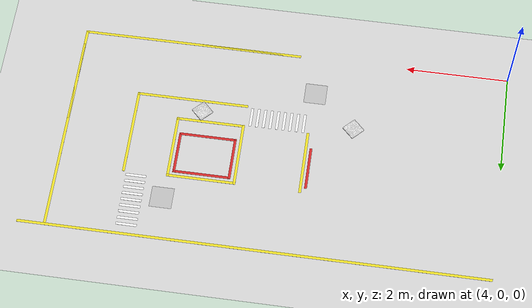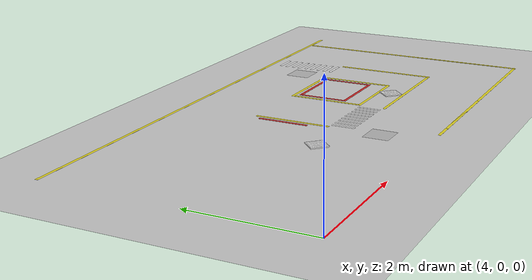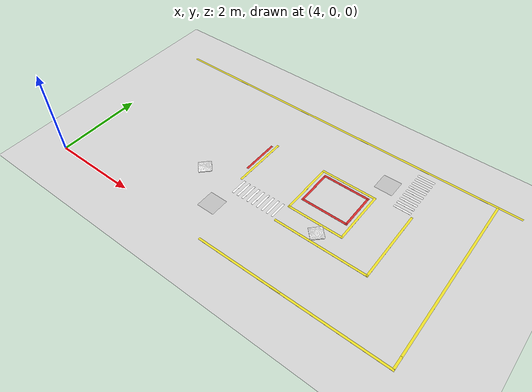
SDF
<sdf version="1.6">
 <world name="default">
  <model name="ground_plane">
   <static>1</static>
   <link name="link">
    <collision name="collision">
     <geometry><plane><normal>0 0 1</normal><size>100 100</size></plane></geometry>
     <surface><friction><ode><mu>100</mu><mu2>50</mu2></ode></friction></surface>
    </collision>
    <visual name="visual">
     <cast_shadows>0</cast_shadows>
     <geometry><plane><normal>0 0 1</normal><size>100 100</size></plane></geometry>
     <material>
      <script><uri>file://media/materials/scripts/gazebo.material</uri><name>Gazebo/Grey</name></script>
     </material>
    </visual>
   </link>
  </model>
  <model name="newPedestrianSign">
   <link name="link_7">
    <inertial>
     <mass>1</mass>
     <inertia>
      <ixx>0.166667</ixx>
      <ixy>0</ixy>
      <ixz>0</ixz>
      <iyy>0.166667</iyy>
      <iyz>0</iyz>
      <izz>0.166667</izz>
     </inertia>
    </inertial>
    <visual name="visual">
     <pose>-0.2 -0.2 0 -1.5708 -0 0</pose>
     <geometry>
      <mesh><uri>model://newPedestrianSign/model/model.dae</uri><scale>0.5 0.5 0.5</scale></mesh>
     </geometry>
     <material><lighting>1</lighting></material>
    </visual>
    <collision name="collision">
     <pose>0 0 0 0 -0 0.785398</pose>
     <geometry><box><size>0.28 0.28 1e-05</size></box></geometry>
     <surface>
      <friction>
       <ode><mu>1</mu><mu2>1</mu2><fdir1>0 0 0</fdir1><slip1>0</slip1><slip2>0</slip2></ode>
       <torsional>
        <coefficient>1</coefficient>
        <patch_radius>0</patch_radius>
        <surface_radius>0</surface_radius>
        <use_patch_radius>1</use_patch_radius>
        <ode><slip>0</slip></ode>
       </torsional>
      </friction>
      <bounce><restitution_coefficient>0</restitution_coefficient><threshold>1e+06</threshold></bounce>
      <contact>
       <collide_without_contact>0</collide_without_contact>
       <collide_without_contact_bitmask>1</collide_without_contact_bitmask>
       <collide_bitmask>1</collide_bitmask>
       <ode>
        <soft_cfm>0</soft_cfm>
        <soft_erp>0.2</soft_erp>
        <kp>1e+13</kp>
        <kd>1</kd>
        <max_vel>0.01</max_vel>
        <min_depth>0</min_depth>
       </ode>
       <bullet>
        <split_impulse>1</split_impulse>
        <split_impulse_penetration_threshold>-0.01</split_impulse_penetration_threshold>
        <soft_cfm>0</soft_cfm>
        <soft_erp>0.2</soft_erp>
        <kp>1e+13</kp>
        <kd>1</kd>
       </bullet>
      </contact>
     </surface>
    </collision>
   </link>
   <static>1</static>
   <pose>6.96801 1.5365 0 0 -0 0</pose>
  </model>
  <model name="newPedestrianSign_0">
   <link name="link_7">
    <inertial>
     <mass>1</mass>
     <inertia>
      <ixx>0.166667</ixx>
      <ixy>0</ixy>
      <ixz>0</ixz>
      <iyy>0.166667</iyy>
      <iyz>0</iyz>
      <izz>0.166667</izz>
     </inertia>
    </inertial>
    <visual name="visual">
     <pose>-0.2 -0.2 0 -1.5708 -0 0</pose>
     <geometry>
      <mesh><uri>model://newPedestrianSign/model/model.dae</uri><scale>0.5 0.5 0.5</scale></mesh>
     </geometry>
     <material><lighting>1</lighting></material>
    </visual>
    <collision name="collision">
     <pose>0 0 0 0 -0 0.785398</pose>
     <geometry><box><size>0.28 0.28 1e-05</size></box></geometry>
     <surface>
      <friction>
       <ode><mu>1</mu><mu2>1</mu2><fdir1>0 0 0</fdir1><slip1>0</slip1><slip2>0</slip2></ode>
       <torsional>
        <coefficient>1</coefficient>
        <patch_radius>0</patch_radius>
        <surface_radius>0</surface_radius>
        <use_patch_radius>1</use_patch_radius>
        <ode><slip>0</slip></ode>
       </torsional>
      </friction>
      <bounce><restitution_coefficient>0</restitution_coefficient><threshold>1e+06</threshold></bounce>
      <contact>
       <collide_without_contact>0</collide_without_contact>
       <collide_without_contact_bitmask>1</collide_without_contact_bitmask>
       <collide_bitmask>1</collide_bitmask>
       <ode>
        <soft_cfm>0</soft_cfm>
        <soft_erp>0.2</soft_erp>
        <kp>1e+13</kp>
        <kd>1</kd>
        <max_vel>0.01</max_vel>
        <min_depth>0</min_depth>
       </ode>
       <bullet>
        <split_impulse>1</split_impulse>
        <split_impulse_penetration_threshold>-0.01</split_impulse_penetration_threshold>
        <soft_cfm>0</soft_cfm>
        <soft_erp>0.2</soft_erp>
        <kp>1e+13</kp>
        <kd>1</kd>
       </bullet>
      </contact>
     </surface>
    </collision>
   </link>
   <static>1</static>
   <pose>9.94353 1.54159 0 0 -0 0</pose>
  </model>
  <model name="line2m_0">
   <link name="link_0">
    <inertial>
     <mass>1</mass>
     <inertia>
      <ixx>0.166667</ixx>
      <ixy>0</ixy>
      <ixz>0</ixz>
      <iyy>0.166667</iyy>
      <iyz>0</iyz>
      <izz>0.166667</izz>
     </inertia>
    </inertial>
    <visual name="visual">
     <geometry><box><size>2 0.05 0.001</size></box></geometry>
     <material>
      <lighting>1</lighting>
      <script><uri>file://media/materials/scripts/gazebo.material</uri><name>Gazebo/Yellow</name></script>
     </material>
    </visual>
    <collision name="collision">
     <geometry><box><size>2 0.05 1e-05</size></box></geometry>
     <surface>
      <friction>
       <ode><mu>1</mu><mu2>1</mu2><fdir1>0 0 0</fdir1><slip1>0</slip1><slip2>0</slip2></ode>
       <torsional>
        <coefficient>1</coefficient>
        <patch_radius>0</patch_radius>
        <surface_radius>0</surface_radius>
        <use_patch_radius>1</use_patch_radius>
        <ode><slip>0</slip></ode>
       </torsional>
      </friction>
      <bounce><restitution_coefficient>0</restitution_coefficient><threshold>1e+06</threshold></bounce>
      <contact>
       <collide_without_contact>0</collide_without_contact>
       <collide_without_contact_bitmask>1</collide_without_contact_bitmask>
       <collide_bitmask>1</collide_bitmask>
       <ode>
        <soft_cfm>0</soft_cfm>
        <soft_erp>0.2</soft_erp>
        <kp>1e+13</kp>
        <kd>1</kd>
        <max_vel>0.01</max_vel>
        <min_depth>0</min_depth>
       </ode>
       <bullet>
        <split_impulse>1</split_impulse>
        <split_impulse_penetration_threshold>-0.01</split_impulse_penetration_threshold>
        <soft_cfm>0</soft_cfm>
        <soft_erp>0.2</soft_erp>
        <kp>1e+13</kp>
        <kd>1</kd>
       </bullet>
      </contact>
     </surface>
    </collision>
   </link>
   <static>1</static>
   <pose>9.13049 0 0 0 -0 0</pose>
  </model>
  <model name="line9m">
   <link name="link_1">
    <inertial>
     <mass>1</mass>
     <inertia>
      <ixx>0.166667</ixx>
      <ixy>0</ixy>
      <ixz>0</ixz>
      <iyy>0.166667</iyy>
      <iyz>0</iyz>
      <izz>0.166667</izz>
     </inertia>
    </inertial>
    <visual name="visual">
     <geometry><box><size>9 0.05 0.001</size></box></geometry>
     <material>
      <lighting>1</lighting>
      <script><uri>file://media/materials/scripts/gazebo.material</uri><name>Gazebo/Yellow</name></script>
     </material>
    </visual>
   </link>
   <static>1</static>
   <pose>8.5 4.3 0 0 -0 0</pose>
  </model>
  <model name="line2m_1">
   <link name="link_0">
    <inertial>
     <mass>1</mass>
     <inertia>
      <ixx>0.166667</ixx>
      <ixy>0</ixy>
      <ixz>0</ixz>
      <iyy>0.166667</iyy>
      <iyz>0</iyz>
      <izz>0.166667</izz>
     </inertia>
    </inertial>
    <visual name="visual">
     <geometry><box><size>2 0.05 0.001</size></box></geometry>
     <material>
      <lighting>1</lighting>
      <script><uri>file://media/materials/scripts/gazebo.material</uri><name>Gazebo/Yellow</name></script>
     </material>
    </visual>
    <collision name="collision">
     <geometry><box><size>2 0.05 1e-05</size></box></geometry>
     <surface>
      <friction>
       <ode><mu>1</mu><mu2>1</mu2><fdir1>0 0 0</fdir1><slip1>0</slip1><slip2>0</slip2></ode>
       <torsional>
        <coefficient>1</coefficient>
        <patch_radius>0</patch_radius>
        <surface_radius>0</surface_radius>
        <use_patch_radius>1</use_patch_radius>
        <ode><slip>0</slip></ode>
       </torsional>
      </friction>
      <bounce><restitution_coefficient>0</restitution_coefficient><threshold>1e+06</threshold></bounce>
      <contact>
       <collide_without_contact>0</collide_without_contact>
       <collide_without_contact_bitmask>1</collide_without_contact_bitmask>
       <collide_bitmask>1</collide_bitmask>
       <ode>
        <soft_cfm>0</soft_cfm>
        <soft_erp>0.2</soft_erp>
        <kp>1e+13</kp>
        <kd>1</kd>
        <max_vel>0.01</max_vel>
        <min_depth>0</min_depth>
       </ode>
       <bullet>
        <split_impulse>1</split_impulse>
        <split_impulse_penetration_threshold>-0.01</split_impulse_penetration_threshold>
        <soft_cfm>0</soft_cfm>
        <soft_erp>0.2</soft_erp>
        <kp>1e+13</kp>
        <kd>1</kd>
       </bullet>
      </contact>
     </surface>
    </collision>
   </link>
   <static>1</static>
   <pose>12.47 1.00117 0 0 -0 1.5708</pose>
  </model>
  <model name="forkliftRoadSign">
   <link name="link_7">
    <inertial>
     <mass>1</mass>
     <inertia>
      <ixx>0.166667</ixx>
      <ixy>0</ixy>
      <ixz>0</ixz>
      <iyy>0.166667</iyy>
      <iyz>0</iyz>
      <izz>0.166667</izz>
     </inertia>
    </inertial>
    <visual name="visual">
     <pose>-0.2 -0.2 0.01 -1.5708 -0 0</pose>
     <geometry>
      <mesh><uri>model://forkliftRoadSign/model/model.dae</uri><scale>0.7 0.7 0.7</scale></mesh>
     </geometry>
     <material><lighting>1</lighting></material>
    </visual>
   </link>
   <static>1</static>
   <pose>7.75 0.8 0 0 -0 1.5708</pose>
  </model>
  <model name="forkliftRoadSign_0">
   <link name="link_7">
    <inertial>
     <mass>1</mass>
     <inertia>
      <ixx>0.166667</ixx>
      <ixy>0</ixy>
      <ixz>0</ixz>
      <iyy>0.166667</iyy>
      <iyz>0</iyz>
      <izz>0.166667</izz>
     </inertia>
    </inertial>
    <visual name="visual">
     <pose>-0.2 -0.2 0.01 -1.5708 -0 0</pose>
     <geometry>
      <mesh><uri>model://forkliftRoadSign/model/model.dae</uri><scale>0.7 0.7 0.7</scale></mesh>
     </geometry>
     <material><lighting>1</lighting></material>
    </visual>
   </link>
   <static>1</static>
   <pose>10.3501 3.4718 0 0 0 -1.5708</pose>
  </model>
  <model name="zebraCrossing9_0">
   <link name="link_0">
    <inertial>
     <mass>1</mass>
     <inertia>
      <ixx>0.166667</ixx>
      <ixy>0</ixy>
      <ixz>0</ixz>
      <iyy>0.166667</iyy>
      <iyz>0</iyz>
      <izz>0.166667</izz>
     </inertia>
    </inertial>
    <visual name="visual">
     <geometry><box><size>0.05 0.4 0.001</size></box></geometry>
     <material>
      <lighting>1</lighting>
      <script><uri>file://media/materials/scripts/gazebo.material</uri><name>Gazebo/White</name></script>
      <shader type="pixel"><normal_map>__default__</normal_map></shader>
      <ambient>1 1 1 1</ambient>
      <diffuse>1 1 1 1</diffuse>
      <specular>0.01 0.01 0.01 1</specular>
      <emissive>0 0 0 1</emissive>
     </material>
     <cast_shadows>0</cast_shadows>
    </visual>
    <visual name="ModelPreview_0::link_0::visual_1">
     <pose>0.13 0 0 0 -0 0</pose>
     <geometry><box><size>0.05 0.4 0.001</size></box></geometry>
     <material>
      <lighting>1</lighting>
      <script><uri>file://media/materials/scripts/gazebo.material</uri><name>Gazebo/White</name></script>
      <shader type="pixel"><normal_map>__default__</normal_map></shader>
      <ambient>1 1 1 1</ambient>
      <diffuse>1 1 1 1</diffuse>
      <specular>0.01 0.01 0.01 1</specular>
      <emissive>0 0 0 1</emissive>
     </material>
     <cast_shadows>0</cast_shadows>
    </visual>
    <visual name="ModelPreview_0::link_0::visual_2">
     <pose>0.26 0 0 0 -0 0</pose>
     <geometry><box><size>0.05 0.4 0.001</size></box></geometry>
     <material>
      <lighting>1</lighting>
      <script><uri>file://media/materials/scripts/gazebo.material</uri><name>Gazebo/White</name></script>
      <shader type="pixel"><normal_map>__default__</normal_map></shader>
      <ambient>1 1 1 1</ambient>
      <diffuse>1 1 1 1</diffuse>
      <specular>0.01 0.01 0.01 1</specular>
      <emissive>0 0 0 1</emissive>
     </material>
     <cast_shadows>0</cast_shadows>
    </visual>
    <visual name="ModelPreview_0::link_0::visual_3">
     <pose>0.39 0 0 0 -0 0</pose>
     <geometry><box><size>0.05 0.4 0.001</size></box></geometry>
     <material>
      <lighting>1</lighting>
      <script><uri>file://media/materials/scripts/gazebo.material</uri><name>Gazebo/White</name></script>
      <shader type="pixel"><normal_map>__default__</normal_map></shader>
      <ambient>1 1 1 1</ambient>
      <diffuse>1 1 1 1</diffuse>
      <specular>0.01 0.01 0.01 1</specular>
      <emissive>0 0 0 1</emissive>
     </material>
     <cast_shadows>0</cast_shadows>
    </visual>
    <visual name="ModelPreview_0::link_0::visual_4">
     <pose>0.52 0 0 0 -0 0</pose>
     <geometry><box><size>0.05 0.4 0.001</size></box></geometry>
     <material>
      <lighting>1</lighting>
      <script><uri>file://media/materials/scripts/gazebo.material</uri><name>Gazebo/White</name></script>
      <shader type="pixel"><normal_map>__default__</normal_map></shader>
      <ambient>1 1 1 1</ambient>
      <diffuse>1 1 1 1</diffuse>
      <specular>0.01 0.01 0.01 1</specular>
      <emissive>0 0 0 1</emissive>
     </material>
     <cast_shadows>0</cast_shadows>
    </visual>
    <visual name="ModelPreview_0::link_0::visual_5">
     <pose>-0.13 0 0 0 -0 0</pose>
     <geometry><box><size>0.05 0.4 0.001</size></box></geometry>
     <material>
      <lighting>1</lighting>
      <script><uri>file://media/materials/scripts/gazebo.material</uri><name>Gazebo/White</name></script>
      <shader type="pixel"><normal_map>__default__</normal_map></shader>
      <ambient>1 1 1 1</ambient>
      <diffuse>1 1 1 1</diffuse>
      <specular>0.01 0.01 0.01 1</specular>
      <emissive>0 0 0 1</emissive>
     </material>
     <cast_shadows>0</cast_shadows>
    </visual>
    <visual name="ModelPreview_0::link_0::visual_6">
     <pose>-0.26 0 0 0 -0 0</pose>
     <geometry><box><size>0.05 0.4 0.001</size></box></geometry>
     <material>
      <lighting>1</lighting>
      <script><uri>file://media/materials/scripts/gazebo.material</uri><name>Gazebo/White</name></script>
      <shader type="pixel"><normal_map>__default__</normal_map></shader>
      <ambient>1 1 1 1</ambient>
      <diffuse>1 1 1 1</diffuse>
      <specular>0.01 0.01 0.01 1</specular>
      <emissive>0 0 0 1</emissive>
     </material>
     <cast_shadows>0</cast_shadows>
    </visual>
    <visual name="ModelPreview_0::link_0::visual_7">
     <pose>-0.39 0 0 0 -0 0</pose>
     <geometry><box><size>0.05 0.4 0.001</size></box></geometry>
     <material>
      <lighting>1</lighting>
      <script><uri>file://media/materials/scripts/gazebo.material</uri><name>Gazebo/White</name></script>
      <shader type="pixel"><normal_map>__default__</normal_map></shader>
      <ambient>1 1 1 1</ambient>
      <diffuse>1 1 1 1</diffuse>
      <specular>0.01 0.01 0.01 1</specular>
      <emissive>0 0 0 1</emissive>
     </material>
     <cast_shadows>0</cast_shadows>
    </visual>
    <visual name="ModelPreview_0::link_0::visual_8">
     <pose>-0.52 0 0 0 -0 0</pose>
     <geometry><box><size>0.05 0.4 0.001</size></box></geometry>
     <material>
      <lighting>1</lighting>
      <script><uri>file://media/materials/scripts/gazebo.material</uri><name>Gazebo/White</name></script>
      <shader type="pixel"><normal_map>__default__</normal_map></shader>
      <ambient>1 1 1 1</ambient>
      <diffuse>1 1 1 1</diffuse>
      <specular>0.01 0.01 0.01 1</specular>
      <emissive>0 0 0 1</emissive>
     </material>
     <cast_shadows>0</cast_shadows>
    </visual>
   </link>
   <static>1</static>
   <pose>8.4 1.5 0 0 -0 0</pose>
  </model>
  <model name="zebraCrossing9_1">
   <link name="link_0">
    <inertial>
     <mass>1</mass>
     <inertia>
      <ixx>0.166667</ixx>
      <ixy>0</ixy>
      <ixz>0</ixz>
      <iyy>0.166667</iyy>
      <iyz>0</iyz>
      <izz>0.166667</izz>
     </inertia>
    </inertial>
    <visual name="visual">
     <geometry><box><size>0.05 0.4 0.001</size></box></geometry>
     <material>
      <lighting>1</lighting>
      <script><uri>file://media/materials/scripts/gazebo.material</uri><name>Gazebo/White</name></script>
      <shader type="pixel"><normal_map>__default__</normal_map></shader>
      <ambient>1 1 1 1</ambient>
      <diffuse>1 1 1 1</diffuse>
      <specular>0.01 0.01 0.01 1</specular>
      <emissive>0 0 0 1</emissive>
     </material>
     <cast_shadows>0</cast_shadows>
    </visual>
    <visual name="ModelPreview_0::link_0::visual_1">
     <pose>0.13 0 0 0 -0 0</pose>
     <geometry><box><size>0.05 0.4 0.001</size></box></geometry>
     <material>
      <lighting>1</lighting>
      <script><uri>file://media/materials/scripts/gazebo.material</uri><name>Gazebo/White</name></script>
      <shader type="pixel"><normal_map>__default__</normal_map></shader>
      <ambient>1 1 1 1</ambient>
      <diffuse>1 1 1 1</diffuse>
      <specular>0.01 0.01 0.01 1</specular>
      <emissive>0 0 0 1</emissive>
     </material>
     <cast_shadows>0</cast_shadows>
    </visual>
    <visual name="ModelPreview_0::link_0::visual_2">
     <pose>0.26 0 0 0 -0 0</pose>
     <geometry><box><size>0.05 0.4 0.001</size></box></geometry>
     <material>
      <lighting>1</lighting>
      <script><uri>file://media/materials/scripts/gazebo.material</uri><name>Gazebo/White</name></script>
      <shader type="pixel"><normal_map>__default__</normal_map></shader>
      <ambient>1 1 1 1</ambient>
      <diffuse>1 1 1 1</diffuse>
      <specular>0.01 0.01 0.01 1</specular>
      <emissive>0 0 0 1</emissive>
     </material>
     <cast_shadows>0</cast_shadows>
    </visual>
    <visual name="ModelPreview_0::link_0::visual_3">
     <pose>0.39 0 0 0 -0 0</pose>
     <geometry><box><size>0.05 0.4 0.001</size></box></geometry>
     <material>
      <lighting>1</lighting>
      <script><uri>file://media/materials/scripts/gazebo.material</uri><name>Gazebo/White</name></script>
      <shader type="pixel"><normal_map>__default__</normal_map></shader>
      <ambient>1 1 1 1</ambient>
      <diffuse>1 1 1 1</diffuse>
      <specular>0.01 0.01 0.01 1</specular>
      <emissive>0 0 0 1</emissive>
     </material>
     <cast_shadows>0</cast_shadows>
    </visual>
    <visual name="ModelPreview_0::link_0::visual_4">
     <pose>0.52 0 0 0 -0 0</pose>
     <geometry><box><size>0.05 0.4 0.001</size></box></geometry>
     <material>
      <lighting>1</lighting>
      <script><uri>file://media/materials/scripts/gazebo.material</uri><name>Gazebo/White</name></script>
      <shader type="pixel"><normal_map>__default__</normal_map></shader>
      <ambient>1 1 1 1</ambient>
      <diffuse>1 1 1 1</diffuse>
      <specular>0.01 0.01 0.01 1</specular>
      <emissive>0 0 0 1</emissive>
     </material>
     <cast_shadows>0</cast_shadows>
    </visual>
    <visual name="ModelPreview_0::link_0::visual_5">
     <pose>-0.13 0 0 0 -0 0</pose>
     <geometry><box><size>0.05 0.4 0.001</size></box></geometry>
     <material>
      <lighting>1</lighting>
      <script><uri>file://media/materials/scripts/gazebo.material</uri><name>Gazebo/White</name></script>
      <shader type="pixel"><normal_map>__default__</normal_map></shader>
      <ambient>1 1 1 1</ambient>
      <diffuse>1 1 1 1</diffuse>
      <specular>0.01 0.01 0.01 1</specular>
      <emissive>0 0 0 1</emissive>
     </material>
     <cast_shadows>0</cast_shadows>
    </visual>
    <visual name="ModelPreview_0::link_0::visual_6">
     <pose>-0.26 0 0 0 -0 0</pose>
     <geometry><box><size>0.05 0.4 0.001</size></box></geometry>
     <material>
      <lighting>1</lighting>
      <script><uri>file://media/materials/scripts/gazebo.material</uri><name>Gazebo/White</name></script>
      <shader type="pixel"><normal_map>__default__</normal_map></shader>
      <ambient>1 1 1 1</ambient>
      <diffuse>1 1 1 1</diffuse>
      <specular>0.01 0.01 0.01 1</specular>
      <emissive>0 0 0 1</emissive>
     </material>
     <cast_shadows>0</cast_shadows>
    </visual>
    <visual name="ModelPreview_0::link_0::visual_7">
     <pose>-0.39 0 0 0 -0 0</pose>
     <geometry><box><size>0.05 0.4 0.001</size></box></geometry>
     <material>
      <lighting>1</lighting>
      <script><uri>file://media/materials/scripts/gazebo.material</uri><name>Gazebo/White</name></script>
      <shader type="pixel"><normal_map>__default__</normal_map></shader>
      <ambient>1 1 1 1</ambient>
      <diffuse>1 1 1 1</diffuse>
      <specular>0.01 0.01 0.01 1</specular>
      <emissive>0 0 0 1</emissive>
     </material>
     <cast_shadows>0</cast_shadows>
    </visual>
    <visual name="ModelPreview_0::link_0::visual_8">
     <pose>-0.52 0 0 0 -0 0</pose>
     <geometry><box><size>0.05 0.4 0.001</size></box></geometry>
     <material>
      <lighting>1</lighting>
      <script><uri>file://media/materials/scripts/gazebo.material</uri><name>Gazebo/White</name></script>
      <shader type="pixel"><normal_map>__default__</normal_map></shader>
      <ambient>1 1 1 1</ambient>
      <diffuse>1 1 1 1</diffuse>
      <specular>0.01 0.01 0.01 1</specular>
      <emissive>0 0 0 1</emissive>
     </material>
     <cast_shadows>0</cast_shadows>
    </visual>
   </link>
   <static>1</static>
   <pose>10.9351 3.58011 0 0 -0 1.5708</pose>
  </model>
  <model name="line175cm">
   <link name="link_1">
    <inertial>
     <mass>1</mass>
     <inertia>
      <ixx>0.166667</ixx>
      <ixy>0</ixy>
      <ixz>0</ixz>
      <iyy>0.166667</iyy>
      <iyz>0</iyz>
      <izz>0.166667</izz>
     </inertia>
    </inertial>
    <visual name="visual">
     <geometry><box><size>1.75 0.05 0.001</size></box></geometry>
     <material>
      <script><uri>file://media/materials/scripts/gazebo.material</uri><name>Gazebo/Yellow</name></script>
     </material>
    </visual>
    <collision name="collision">
     <geometry><box><size>1.75 0.05 1e-05</size></box></geometry>
     <surface>
      <friction>
       <ode><mu>1</mu><mu2>1</mu2><fdir1>0 0 0</fdir1><slip1>0</slip1><slip2>0</slip2></ode>
       <torsional>
        <coefficient>1</coefficient>
        <patch_radius>0</patch_radius>
        <surface_radius>0</surface_radius>
        <use_patch_radius>1</use_patch_radius>
        <ode><slip>0</slip></ode>
       </torsional>
      </friction>
      <bounce><restitution_coefficient>0</restitution_coefficient><threshold>1e+06</threshold></bounce>
      <contact>
       <collide_without_contact>0</collide_without_contact>
       <collide_without_contact_bitmask>1</collide_without_contact_bitmask>
       <collide_bitmask>1</collide_bitmask>
       <ode>
        <soft_cfm>0</soft_cfm>
        <soft_erp>0.2</soft_erp>
        <kp>1e+13</kp>
        <kd>1</kd>
        <max_vel>0.01</max_vel>
        <min_depth>0</min_depth>
       </ode>
       <bullet>
        <split_impulse>1</split_impulse>
        <split_impulse_penetration_threshold>-0.01</split_impulse_penetration_threshold>
        <soft_cfm>0</soft_cfm>
        <soft_erp>0.2</soft_erp>
        <kp>1e+13</kp>
        <kd>1</kd>
       </bullet>
      </contact>
     </surface>
    </collision>
   </link>
   <static>1</static>
   <pose>11.19 2.12334 0 0 -0 1.5708</pose>
  </model>
  <model name="line220cm">
   <link name="link_1">
    <inertial>
     <mass>1</mass>
     <inertia>
      <ixx>0.166667</ixx>
      <ixy>0</ixy>
      <ixz>0</ixz>
      <iyy>0.166667</iyy>
      <iyz>0</iyz>
      <izz>0.166667</izz>
     </inertia>
    </inertial>
    <visual name="visual">
     <geometry><box><size>2.2 0.05 0.001</size></box></geometry>
     <material>
      <script><uri>file://media/materials/scripts/gazebo.material</uri><name>Gazebo/Yellow</name></script>
     </material>
    </visual>
    <collision name="collision">
     <geometry><box><size>2.2 0.05 1e-05</size></box></geometry>
     <surface>
      <friction>
       <ode><mu>1</mu><mu2>1</mu2><fdir1>0 0 0</fdir1><slip1>0</slip1><slip2>0</slip2></ode>
       <torsional>
        <coefficient>1</coefficient>
        <patch_radius>0</patch_radius>
        <surface_radius>0</surface_radius>
        <use_patch_radius>1</use_patch_radius>
        <ode><slip>0</slip></ode>
       </torsional>
      </friction>
      <bounce><restitution_coefficient>0</restitution_coefficient><threshold>1e+06</threshold></bounce>
      <contact>
       <collide_without_contact>0</collide_without_contact>
       <collide_without_contact_bitmask>1</collide_without_contact_bitmask>
       <collide_bitmask>1</collide_bitmask>
       <ode>
        <soft_cfm>0</soft_cfm>
        <soft_erp>0.2</soft_erp>
        <kp>1e+13</kp>
        <kd>1</kd>
        <max_vel>0.01</max_vel>
        <min_depth>0</min_depth>
       </ode>
       <bullet>
        <split_impulse>1</split_impulse>
        <split_impulse_penetration_threshold>-0.01</split_impulse_penetration_threshold>
        <soft_cfm>0</soft_cfm>
        <soft_erp>0.2</soft_erp>
        <kp>1e+13</kp>
        <kd>1</kd>
       </bullet>
      </contact>
     </surface>
    </collision>
   </link>
   <static>1</static>
   <pose>10.115 1.27 0 0 -0 0</pose>
  </model>
  <model name="line134cm">
   <link name="link_1">
    <inertial>
     <mass>1</mass>
     <inertia>
      <ixx>0.166667</ixx>
      <ixy>0</ixy>
      <ixz>0</ixz>
      <iyy>0.166667</iyy>
      <iyz>0</iyz>
      <izz>0.166667</izz>
     </inertia>
    </inertial>
    <visual name="visual">
     <geometry><box><size>1.34 0.05 0.001</size></box></geometry>
     <material>
      <script><uri>file://media/materials/scripts/gazebo.material</uri><name>Gazebo/Yellow</name></script>
     </material>
    </visual>
    <collision name="collision">
     <geometry><box><size>1.34 0.05 1e-05</size></box></geometry>
     <surface>
      <friction>
       <ode><mu>1</mu><mu2>1</mu2><fdir1>0 0 0</fdir1><slip1>0</slip1><slip2>0</slip2></ode>
       <torsional>
        <coefficient>1</coefficient>
        <patch_radius>0</patch_radius>
        <surface_radius>0</surface_radius>
        <use_patch_radius>1</use_patch_radius>
        <ode><slip>0</slip></ode>
       </torsional>
      </friction>
      <bounce><restitution_coefficient>0</restitution_coefficient><threshold>1e+06</threshold></bounce>
      <contact>
       <collide_without_contact>0</collide_without_contact>
       <collide_without_contact_bitmask>1</collide_without_contact_bitmask>
       <collide_bitmask>1</collide_bitmask>
       <ode>
        <soft_cfm>0</soft_cfm>
        <soft_erp>0.2</soft_erp>
        <kp>1e+13</kp>
        <kd>1</kd>
        <max_vel>0.01</max_vel>
        <min_depth>0</min_depth>
       </ode>
       <bullet>
        <split_impulse>1</split_impulse>
        <split_impulse_penetration_threshold>-0.01</split_impulse_penetration_threshold>
        <soft_cfm>0</soft_cfm>
        <soft_erp>0.2</soft_erp>
        <kp>1e+13</kp>
        <kd>1</kd>
       </bullet>
      </contact>
     </surface>
    </collision>
   </link>
   <static>1</static>
   <pose>9.69 1.72 0 0 -0 0</pose>
  </model>
  <model name="line134cm_0">
   <link name="link_1">
    <inertial>
     <mass>1</mass>
     <inertia>
      <ixx>0.166667</ixx>
      <ixy>0</ixy>
      <ixz>0</ixz>
      <iyy>0.166667</iyy>
      <iyz>0</iyz>
      <izz>0.166667</izz>
     </inertia>
    </inertial>
    <visual name="visual">
     <geometry><box><size>1.34 0.05 0.001</size></box></geometry>
     <material>
      <script><uri>file://media/materials/scripts/gazebo.material</uri><name>Gazebo/Yellow</name></script>
     </material>
    </visual>
    <collision name="collision">
     <geometry><box><size>1.34 0.05 1e-05</size></box></geometry>
     <surface>
      <friction>
       <ode><mu>1</mu><mu2>1</mu2><fdir1>0 0 0</fdir1><slip1>0</slip1><slip2>0</slip2></ode>
       <torsional>
        <coefficient>1</coefficient>
        <patch_radius>0</patch_radius>
        <surface_radius>0</surface_radius>
        <use_patch_radius>1</use_patch_radius>
        <ode><slip>0</slip></ode>
       </torsional>
      </friction>
      <bounce><restitution_coefficient>0</restitution_coefficient><threshold>1e+06</threshold></bounce>
      <contact>
       <collide_without_contact>0</collide_without_contact>
       <collide_without_contact_bitmask>1</collide_without_contact_bitmask>
       <collide_bitmask>1</collide_bitmask>
       <ode>
        <soft_cfm>0</soft_cfm>
        <soft_erp>0.2</soft_erp>
        <kp>1e+13</kp>
        <kd>1</kd>
        <max_vel>0.01</max_vel>
        <min_depth>0</min_depth>
       </ode>
       <bullet>
        <split_impulse>1</split_impulse>
        <split_impulse_penetration_threshold>-0.01</split_impulse_penetration_threshold>
        <soft_cfm>0</soft_cfm>
        <soft_erp>0.2</soft_erp>
        <kp>1e+13</kp>
        <kd>1</kd>
       </bullet>
      </contact>
     </surface>
    </collision>
   </link>
   <static>1</static>
   <pose>9.69 2.97 0 0 -0 0</pose>
  </model>
  <model name="line130cm">
   <link name="link_1">
    <inertial>
     <mass>1</mass>
     <inertia>
      <ixx>0.166667</ixx>
      <ixy>0</ixy>
      <ixz>0</ixz>
      <iyy>0.166667</iyy>
      <iyz>0</iyz>
      <izz>0.166667</izz>
     </inertia>
    </inertial>
    <visual name="visual">
     <geometry><box><size>1.3 0.05 0.001</size></box></geometry>
     <material>
      <script><uri>file://media/materials/scripts/gazebo.material</uri><name>Gazebo/Yellow</name></script>
     </material>
    </visual>
    <collision name="collision">
     <geometry><box><size>1.3 0.05 1e-05</size></box></geometry>
     <surface>
      <friction>
       <ode><mu>1</mu><mu2>1</mu2><fdir1>0 0 0</fdir1><slip1>0</slip1><slip2>0</slip2></ode>
       <torsional>
        <coefficient>1</coefficient>
        <patch_radius>0</patch_radius>
        <surface_radius>0</surface_radius>
        <use_patch_radius>1</use_patch_radius>
        <ode><slip>0</slip></ode>
       </torsional>
      </friction>
      <bounce><restitution_coefficient>0</restitution_coefficient><threshold>1e+06</threshold></bounce>
      <contact>
       <collide_without_contact>0</collide_without_contact>
       <collide_without_contact_bitmask>1</collide_without_contact_bitmask>
       <collide_bitmask>1</collide_bitmask>
       <ode>
        <soft_cfm>0</soft_cfm>
        <soft_erp>0.2</soft_erp>
        <kp>1e+13</kp>
        <kd>1</kd>
        <max_vel>0.01</max_vel>
        <min_depth>0</min_depth>
       </ode>
       <bullet>
        <split_impulse>1</split_impulse>
        <split_impulse_penetration_threshold>-0.01</split_impulse_penetration_threshold>
        <soft_cfm>0</soft_cfm>
        <soft_erp>0.2</soft_erp>
        <kp>1e+13</kp>
        <kd>1</kd>
       </bullet>
      </contact>
     </surface>
    </collision>
   </link>
   <static>1</static>
   <pose>9.045 2.345 0 0 -0 1.5708</pose>
  </model>
  <model name="line130cm_clone">
   <link name="link_1">
    <inertial>
     <mass>1</mass>
     <inertia>
      <ixx>0.166667</ixx>
      <ixy>0</ixy>
      <ixz>0</ixz>
      <iyy>0.166667</iyy>
      <iyz>0</iyz>
      <izz>0.166667</izz>
     </inertia>
    </inertial>
    <visual name="visual">
     <geometry><box><size>1.3 0.05 0.001</size></box></geometry>
     <material>
      <script><uri>file://media/materials/scripts/gazebo.material</uri><name>Gazebo/Yellow</name></script>
     </material>
    </visual>
    <collision name="collision">
     <geometry><box><size>1.3 0.05 1e-05</size></box></geometry>
     <surface>
      <friction>
       <ode><mu>1</mu><mu2>1</mu2><fdir1>0 0 0</fdir1><slip1>0</slip1><slip2>0</slip2></ode>
       <torsional>
        <coefficient>1</coefficient>
        <patch_radius>0</patch_radius>
        <surface_radius>0</surface_radius>
        <use_patch_radius>1</use_patch_radius>
        <ode><slip>0</slip></ode>
       </torsional>
      </friction>
      <bounce><restitution_coefficient>0</restitution_coefficient><threshold>1e+06</threshold></bounce>
      <contact>
       <collide_without_contact>0</collide_without_contact>
       <collide_without_contact_bitmask>1</collide_without_contact_bitmask>
       <collide_bitmask>1</collide_bitmask>
       <ode>
        <soft_cfm>0</soft_cfm>
        <soft_erp>0.2</soft_erp>
        <kp>1e+13</kp>
        <kd>1</kd>
        <max_vel>0.01</max_vel>
        <min_depth>0</min_depth>
       </ode>
       <bullet>
        <split_impulse>1</split_impulse>
        <split_impulse_penetration_threshold>-0.01</split_impulse_penetration_threshold>
        <soft_cfm>0</soft_cfm>
        <soft_erp>0.2</soft_erp>
        <kp>1e+13</kp>
        <kd>1</kd>
       </bullet>
      </contact>
     </surface>
    </collision>
   </link>
   <static>1</static>
   <pose>10.335 2.345 0 0 -0 1.5708</pose>
  </model>
  <model name="line130cm_0">
   <link name="link_1">
    <inertial>
     <mass>1</mass>
     <inertia>
      <ixx>0.166667</ixx>
      <ixy>0</ixy>
      <ixz>0</ixz>
      <iyy>0.166667</iyy>
      <iyz>0</iyz>
      <izz>0.166667</izz>
     </inertia>
    </inertial>
    <visual name="visual">
     <geometry><box><size>1.3 0.05 0.001</size></box></geometry>
     <material>
      <script><uri>file://media/materials/scripts/gazebo.material</uri><name>Gazebo/Yellow</name></script>
     </material>
    </visual>
    <collision name="collision">
     <geometry><box><size>1.3 0.05 1e-05</size></box></geometry>
     <surface>
      <friction>
       <ode><mu>1</mu><mu2>1</mu2><fdir1>0 0 0</fdir1><slip1>0</slip1><slip2>0</slip2></ode>
       <torsional>
        <coefficient>1</coefficient>
        <patch_radius>0</patch_radius>
        <surface_radius>0</surface_radius>
        <use_patch_radius>1</use_patch_radius>
        <ode><slip>0</slip></ode>
       </torsional>
      </friction>
      <bounce><restitution_coefficient>0</restitution_coefficient><threshold>1e+06</threshold></bounce>
      <contact>
       <collide_without_contact>0</collide_without_contact>
       <collide_without_contact_bitmask>1</collide_without_contact_bitmask>
       <collide_bitmask>1</collide_bitmask>
       <ode>
        <soft_cfm>0</soft_cfm>
        <soft_erp>0.2</soft_erp>
        <kp>1e+13</kp>
        <kd>1</kd>
        <max_vel>0.01</max_vel>
        <min_depth>0</min_depth>
       </ode>
       <bullet>
        <split_impulse>1</split_impulse>
        <split_impulse_penetration_threshold>-0.01</split_impulse_penetration_threshold>
        <soft_cfm>0</soft_cfm>
        <soft_erp>0.2</soft_erp>
        <kp>1e+13</kp>
        <kd>1</kd>
       </bullet>
      </contact>
     </surface>
    </collision>
   </link>
   <static>1</static>
   <pose>7.775 2.345 0 0 -0 1.5708</pose>
  </model>
  <model name="line87cm_clone">
   <link name="link_1">
    <inertial>
     <mass>1</mass>
     <inertia>
      <ixx>0.166667</ixx>
      <ixy>0</ixy>
      <ixz>0</ixz>
      <iyy>0.166667</iyy>
      <iyz>0</iyz>
      <izz>0.166667</izz>
     </inertia>
    </inertial>
    <visual name="visual">
     <geometry><box><size>0.87 0.05 0.001</size></box></geometry>
     <material>
      <script><uri>file://media/materials/scripts/gazebo.material</uri><name>Gazebo/Red</name></script>
     </material>
    </visual>
    <collision name="collision">
     <geometry><box><size>0.87 0.05 1e-05</size></box></geometry>
     <surface>
      <friction>
       <ode><mu>1</mu><mu2>1</mu2><fdir1>0 0 0</fdir1><slip1>0</slip1><slip2>0</slip2></ode>
       <torsional>
        <coefficient>1</coefficient>
        <patch_radius>0</patch_radius>
        <surface_radius>0</surface_radius>
        <use_patch_radius>1</use_patch_radius>
        <ode><slip>0</slip></ode>
       </torsional>
      </friction>
      <bounce><restitution_coefficient>0</restitution_coefficient><threshold>1e+06</threshold></bounce>
      <contact>
       <collide_without_contact>0</collide_without_contact>
       <collide_without_contact_bitmask>1</collide_without_contact_bitmask>
       <collide_bitmask>1</collide_bitmask>
       <ode>
        <soft_cfm>0</soft_cfm>
        <soft_erp>0.2</soft_erp>
        <kp>1e+13</kp>
        <kd>1</kd>
        <max_vel>0.01</max_vel>
        <min_depth>0</min_depth>
       </ode>
       <bullet>
        <split_impulse>1</split_impulse>
        <split_impulse_penetration_threshold>-0.01</split_impulse_penetration_threshold>
        <soft_cfm>0</soft_cfm>
        <soft_erp>0.2</soft_erp>
        <kp>1e+13</kp>
        <kd>1</kd>
       </bullet>
      </contact>
     </surface>
    </collision>
   </link>
   <static>1</static>
   <pose>7.675 2.46 0 0 -0 1.5708</pose>
  </model>
  <model name="line87cm_0">
   <link name="link_1">
    <inertial>
     <mass>1</mass>
     <inertia>
      <ixx>0.166667</ixx>
      <ixy>0</ixy>
      <ixz>0</ixz>
      <iyy>0.166667</iyy>
      <iyz>0</iyz>
      <izz>0.166667</izz>
     </inertia>
    </inertial>
    <visual name="visual">
     <geometry><box><size>0.87 0.05 0.001</size></box></geometry>
     <material>
      <script><uri>file://media/materials/scripts/gazebo.material</uri><name>Gazebo/Red</name></script>
     </material>
    </visual>
    <collision name="collision">
     <geometry><box><size>0.87 0.05 1e-05</size></box></geometry>
     <surface>
      <friction>
       <ode><mu>1</mu><mu2>1</mu2><fdir1>0 0 0</fdir1><slip1>0</slip1><slip2>0</slip2></ode>
       <torsional>
        <coefficient>1</coefficient>
        <patch_radius>0</patch_radius>
        <surface_radius>0</surface_radius>
        <use_patch_radius>1</use_patch_radius>
        <ode><slip>0</slip></ode>
       </torsional>
      </friction>
      <bounce><restitution_coefficient>0</restitution_coefficient><threshold>1e+06</threshold></bounce>
      <contact>
       <collide_without_contact>0</collide_without_contact>
       <collide_without_contact_bitmask>1</collide_without_contact_bitmask>
       <collide_bitmask>1</collide_bitmask>
       <ode>
        <soft_cfm>0</soft_cfm>
        <soft_erp>0.2</soft_erp>
        <kp>1e+13</kp>
        <kd>1</kd>
        <max_vel>0.01</max_vel>
        <min_depth>0</min_depth>
       </ode>
       <bullet>
        <split_impulse>1</split_impulse>
        <split_impulse_penetration_threshold>-0.01</split_impulse_penetration_threshold>
        <soft_cfm>0</soft_cfm>
        <soft_erp>0.2</soft_erp>
        <kp>1e+13</kp>
        <kd>1</kd>
       </bullet>
      </contact>
     </surface>
    </collision>
   </link>
   <static>1</static>
   <pose>10.2292 2.46001 0 0 -0 1.5708</pose>
  </model>
  <model name="line87cm_1">
   <link name="link_1">
    <inertial>
     <mass>1</mass>
     <inertia>
      <ixx>0.166667</ixx>
      <ixy>0</ixy>
      <ixz>0</ixz>
      <iyy>0.166667</iyy>
      <iyz>0</iyz>
      <izz>0.166667</izz>
     </inertia>
    </inertial>
    <visual name="visual">
     <geometry><box><size>0.87 0.05 0.001</size></box></geometry>
     <material>
      <script><uri>file://media/materials/scripts/gazebo.material</uri><name>Gazebo/Red</name></script>
     </material>
    </visual>
    <collision name="collision">
     <geometry><box><size>0.87 0.05 1e-05</size></box></geometry>
     <surface>
      <friction>
       <ode><mu>1</mu><mu2>1</mu2><fdir1>0 0 0</fdir1><slip1>0</slip1><slip2>0</slip2></ode>
       <torsional>
        <coefficient>1</coefficient>
        <patch_radius>0</patch_radius>
        <surface_radius>0</surface_radius>
        <use_patch_radius>1</use_patch_radius>
        <ode><slip>0</slip></ode>
       </torsional>
      </friction>
      <bounce><restitution_coefficient>0</restitution_coefficient><threshold>1e+06</threshold></bounce>
      <contact>
       <collide_without_contact>0</collide_without_contact>
       <collide_without_contact_bitmask>1</collide_without_contact_bitmask>
       <collide_bitmask>1</collide_bitmask>
       <ode>
        <soft_cfm>0</soft_cfm>
        <soft_erp>0.2</soft_erp>
        <kp>1e+13</kp>
        <kd>1</kd>
        <max_vel>0.01</max_vel>
        <min_depth>0</min_depth>
       </ode>
       <bullet>
        <split_impulse>1</split_impulse>
        <split_impulse_penetration_threshold>-0.01</split_impulse_penetration_threshold>
        <soft_cfm>0</soft_cfm>
        <soft_erp>0.2</soft_erp>
        <kp>1e+13</kp>
        <kd>1</kd>
       </bullet>
      </contact>
     </surface>
    </collision>
   </link>
   <static>1</static>
   <pose>9.155 2.46 0 0 -0 1.5708</pose>
  </model>
  <model name="line112cm">
   <link name="link_1">
    <inertial>
     <mass>1</mass>
     <inertia>
      <ixx>0.166667</ixx>
      <ixy>0</ixy>
      <ixz>0</ixz>
      <iyy>0.166667</iyy>
      <iyz>0</iyz>
      <izz>0.166667</izz>
     </inertia>
    </inertial>
    <visual name="visual">
     <geometry><box><size>1.12 0.05 0.001</size></box></geometry>
     <material>
      <script><uri>file://media/materials/scripts/gazebo.material</uri><name>Gazebo/Red</name></script>
     </material>
    </visual>
    <collision name="collision">
     <geometry><box><size>1.12 0.05 1e-05</size></box></geometry>
     <surface>
      <friction>
       <ode><mu>1</mu><mu2>1</mu2><fdir1>0 0 0</fdir1><slip1>0</slip1><slip2>0</slip2></ode>
       <torsional>
        <coefficient>1</coefficient>
        <patch_radius>0</patch_radius>
        <surface_radius>0</surface_radius>
        <use_patch_radius>1</use_patch_radius>
        <ode><slip>0</slip></ode>
       </torsional>
      </friction>
      <bounce><restitution_coefficient>0</restitution_coefficient><threshold>1e+06</threshold></bounce>
      <contact>
       <collide_without_contact>0</collide_without_contact>
       <collide_without_contact_bitmask>1</collide_without_contact_bitmask>
       <collide_bitmask>1</collide_bitmask>
       <ode>
        <soft_cfm>0</soft_cfm>
        <soft_erp>0.2</soft_erp>
        <kp>1e+13</kp>
        <kd>1</kd>
        <max_vel>0.01</max_vel>
        <min_depth>0</min_depth>
       </ode>
       <bullet>
        <split_impulse>1</split_impulse>
        <split_impulse_penetration_threshold>-0.01</split_impulse_penetration_threshold>
        <soft_cfm>0</soft_cfm>
        <soft_erp>0.2</soft_erp>
        <kp>1e+13</kp>
        <kd>1</kd>
       </bullet>
      </contact>
     </surface>
    </collision>
   </link>
   <static>1</static>
   <pose>9.69 2.87 0 0 -0 0</pose>
  </model>
  <model name="line112cm_0">
   <link name="link_1">
    <inertial>
     <mass>1</mass>
     <inertia>
      <ixx>0.166667</ixx>
      <ixy>0</ixy>
      <ixz>0</ixz>
      <iyy>0.166667</iyy>
      <iyz>0</iyz>
      <izz>0.166667</izz>
     </inertia>
    </inertial>
    <visual name="visual">
     <geometry><box><size>1.12 0.05 0.001</size></box></geometry>
     <material>
      <script><uri>file://media/materials/scripts/gazebo.material</uri><name>Gazebo/Red</name></script>
     </material>
    </visual>
    <collision name="collision">
     <geometry><box><size>1.12 0.05 1e-05</size></box></geometry>
     <surface>
      <friction>
       <ode><mu>1</mu><mu2>1</mu2><fdir1>0 0 0</fdir1><slip1>0</slip1><slip2>0</slip2></ode>
       <torsional>
        <coefficient>1</coefficient>
        <patch_radius>0</patch_radius>
        <surface_radius>0</surface_radius>
        <use_patch_radius>1</use_patch_radius>
        <ode><slip>0</slip></ode>
       </torsional>
      </friction>
      <bounce><restitution_coefficient>0</restitution_coefficient><threshold>1e+06</threshold></bounce>
      <contact>
       <collide_without_contact>0</collide_without_contact>
       <collide_without_contact_bitmask>1</collide_without_contact_bitmask>
       <collide_bitmask>1</collide_bitmask>
       <ode>
        <soft_cfm>0</soft_cfm>
        <soft_erp>0.2</soft_erp>
        <kp>1e+13</kp>
        <kd>1</kd>
        <max_vel>0.01</max_vel>
        <min_depth>0</min_depth>
       </ode>
       <bullet>
        <split_impulse>1</split_impulse>
        <split_impulse_penetration_threshold>-0.01</split_impulse_penetration_threshold>
        <soft_cfm>0</soft_cfm>
        <soft_erp>0.2</soft_erp>
        <kp>1e+13</kp>
        <kd>1</kd>
       </bullet>
      </contact>
     </surface>
    </collision>
   </link>
   <static>1</static>
   <pose>9.69 2.04719 0 0 -0 0</pose>
  </model>
  <model name="line4m_0">
   <link name="link_3">
    <inertial>
     <mass>1</mass>
     <inertia>
      <ixx>0.166667</ixx>
      <ixy>0</ixy>
      <ixz>0</ixz>
      <iyy>0.166667</iyy>
      <iyz>0</iyz>
      <izz>0.166667</izz>
     </inertia>
    </inertial>
    <visual name="visual">
     <geometry><box><size>0.05 4 0.001</size></box></geometry>
     <material>
      <lighting>1</lighting>
      <script><uri>file://media/materials/scripts/gazebo.material</uri><name>Gazebo/Yellow</name></script>
     </material>
    </visual>
   </link>
   <static>1</static>
   <pose>12.47 2.28635 0 0 -0 0</pose>
  </model>
  <model name="line4m_1">
   <link name="link_3">
    <inertial>
     <mass>1</mass>
     <inertia>
      <ixx>0.166667</ixx>
      <ixy>0</ixy>
      <ixz>0</ixz>
      <iyy>0.166667</iyy>
      <iyz>0</iyz>
      <izz>0.166667</izz>
     </inertia>
    </inertial>
    <visual name="visual">
     <geometry><box><size>0.05 4 0.001</size></box></geometry>
     <material>
      <lighting>1</lighting>
      <script><uri>file://media/materials/scripts/gazebo.material</uri><name>Gazebo/Yellow</name></script>
     </material>
    </visual>
   </link>
   <static>1</static>
   <pose>10.495 0 0 0 -0 1.5708</pose>
  </model>
 </world>
</sdf>
